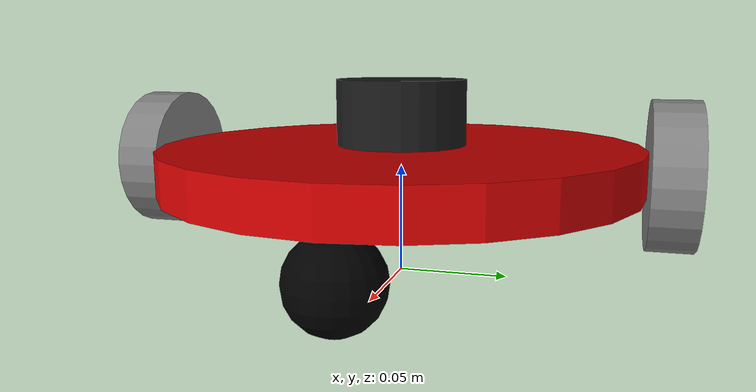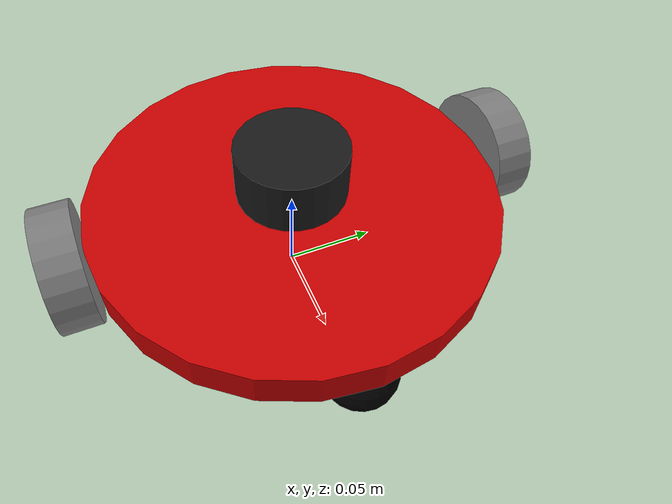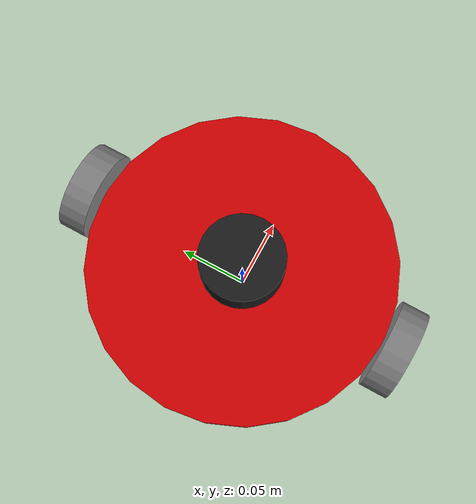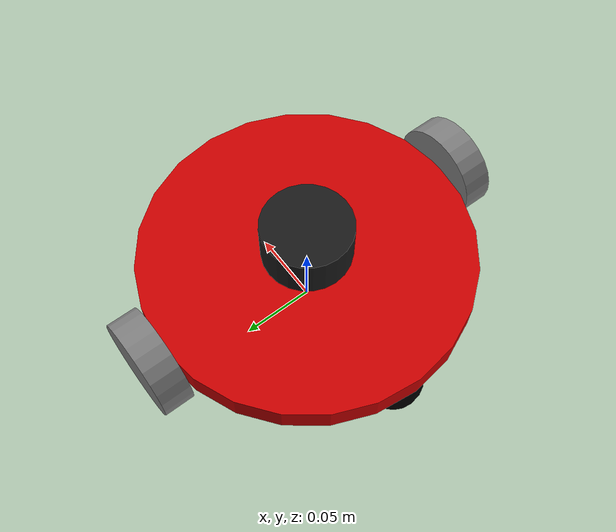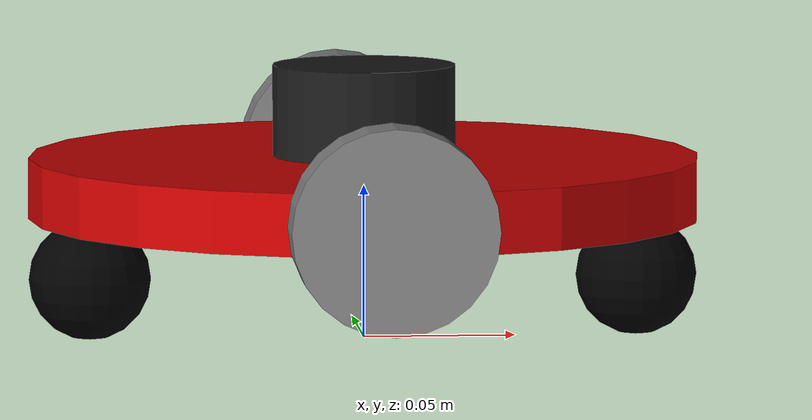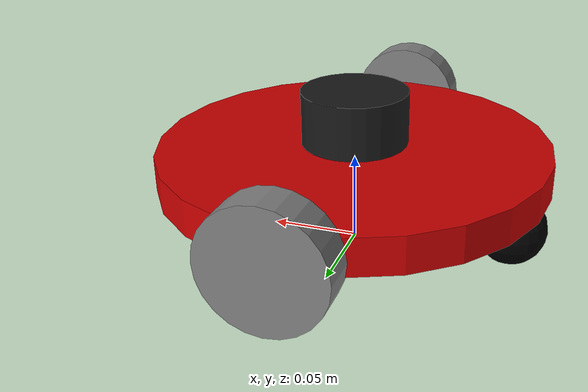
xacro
<?xml version="1.0"?>
<robot xmlns:xacro="http://www.ros.org/wiki/xacro" name="rubio_bot">

  <!--     PROPIEDADES GLOBALES -->
  <xacro:property name="wheel_radius" value="0.0325"/>      <!-- 3.2 cm -->
  <xacro:property name="wheel_separation" value="0.239"/>   <!-- distancia entre ruedas -->
  <xacro:property name="base_height" value="0.05"/>        <!-- altura base -->
  <xacro:property name="caster_radius" value="0.02"/>
  <xacro:property name="lidar_height" value="0.08"/>

  <!--          BASE_LINK        -->

  <link name="base_link">
    <visual>
      <origin xyz="0 0 ${base_height}" rpy="0 0 0"/>
      <geometry>
        <cylinder radius="0.11" length="0.02"/>
      </geometry>
      <material name="red">
        <color rgba="0.8 0.0 0.0 1.0"/>
      </material>
    </visual>

    <collision>
      <origin xyz="0 0 ${base_height}" rpy="0 0 0"/>
      <geometry>
        <cylinder radius="0.11" length="0.02"/>
      </geometry>
    </collision>

    <inertial>
      <mass value="1.0"/>
      <inertia ixx="0.01" iyy="0.01" izz="0.01"
               ixy="0" ixz="0" iyz="0"/>
    </inertial>
  </link>

  <!--       RUEDA IZQUIERDA     -->

  <link name="left_wheel">
    <visual>
      <geometry>
        <cylinder radius="${wheel_radius}" length="0.02"/>
      </geometry>
      <material name="gray">
        <color rgba="0.5 0.5 0.5 1.0"/>
      </material>
    </visual>
    <collision>
      <geometry>
        <cylinder radius="${wheel_radius}" length="0.02"/>
      </geometry>
    </collision>
    <inertial>
      <mass value="0.1"/>
      <inertia ixx="0.001" iyy="0.001" izz="0.001"
               ixy="0" ixz="0" iyz="0"/>
    </inertial>
  </link>

  <joint name="left_wheel_joint" type="continuous">
    <origin xyz="0 ${wheel_separation / 2} ${base_height}" rpy="1.5708 0 0"/>
    <parent link="base_link"/>
    <child link="left_wheel"/>
    <axis xyz="0 0 -1"/>
  </joint>

  <!--       RUEDA DERECHA       -->

  <link name="right_wheel">
    <visual>
      <geometry>
        <cylinder radius="${wheel_radius}" length="0.02"/>
      </geometry>
      <material name="gray">
        <color rgba="0.5 0.5 0.5 1.0"/>
      </material>
    </visual>
    <collision>
      <geometry>
        <cylinder radius="${wheel_radius}" length="0.02"/>
      </geometry>
    </collision>
    <inertial>
      <mass value="0.1"/>
      <inertia ixx="0.001" iyy="0.001" izz="0.001"
               ixy="0" ixz="0" iyz="0"/>
    </inertial>
  </link>

  <joint name="right_wheel_joint" type="continuous">
    <origin xyz="0 ${-wheel_separation / 2} ${base_height}" rpy="1.5708 0 0"/>
    <parent link="base_link"/>
    <child link="right_wheel"/>
    <axis xyz="0 0 1"/>
  </joint>

  <!--       CASTER FRONTAL      -->

  <link name="front_caster">
    <visual>
      <geometry>
        <sphere radius="${caster_radius}"/>
      </geometry>
      <material name="black">
        <color rgba="0 0 0 1"/>
      </material>
    </visual>
  </link>

  <joint name="front_caster_joint" type="fixed">
    <origin xyz="0.09 0 ${caster_radius}" rpy="0 0 0"/>
    <parent link="base_link"/>
    <child link="front_caster"/>
  </joint>

  <!--        CASTER TRASERO     -->

  <link name="rear_caster">
    <visual>
      <geometry>
        <sphere radius="${caster_radius}"/>
      </geometry>
      <material name="black">
        <color rgba="0 0 0 1"/>
      </material>
    </visual>
  </link>

  <joint name="rear_caster_joint" type="fixed">
    <origin xyz="-0.09 0 ${caster_radius}" rpy="0 0 0"/>
    <parent link="base_link"/>
    <child link="rear_caster"/>
  </joint>

  <!--            LIDAR          -->

  <link name="lidar_link">
    <visual>
      <origin xyz="0 0 ${lidar_height}" rpy="0 0 0"/>
      <geometry>
        <cylinder radius="0.03" length="0.03"/>
      </geometry>
      <material name="black">
        <color rgba="0.1 0.1 0.1 1"/>
      </material>
    </visual>
  </link>

  <joint name="lidar_joint" type="fixed">
    <origin xyz="0 0 -0.005" rpy="0 0 0"/>
    <parent link="base_link"/>
    <child link="lidar_link"/>
  </joint>

  <!--    ros2_control + joints  -->

  <!-- Transmission left -->
  <transmission name="left_wheel_trans">
    <type>transmission_interface/SimpleTransmission</type>
    <joint name="left_wheel_joint">
      <hardwareInterface>hardware_interface/VelocityJointInterface</hardwareInterface>
    </joint>
    <actuator name="left_actuator">
      <hardwareInterface>hardware_interface/VelocityJointInterface</hardwareInterface>
      <mechanicalReduction>1</mechanicalReduction>
    </actuator>
  </transmission>

  <!-- Transmission right -->
  <transmission name="right_wheel_trans">
    <type>transmission_interface/SimpleTransmission</type>
    <joint name="right_wheel_joint">
      <hardwareInterface>hardware_interface/VelocityJointInterface</hardwareInterface>
    </joint>
    <actuator name="right_actuator">
      <hardwareInterface>hardware_interface/VelocityJointInterface</hardwareInterface>
      <mechanicalReduction>1</mechanicalReduction>
    </actuator>
  </transmission>

  <!-- ros2_control interface placeholder -->
  <ros2_control name="rubio_hw">
    <hardware>
      <plugin>robot_nav.pico_hardware_interface:PicoSystem</plugin>
    </hardware>

    <joint name="left_wheel_joint">
      <command_interface name="velocity"/>
      <state_interface name="position"/>
      <state_interface name="velocity"/>
    </joint>

    <joint name="right_wheel_joint">
      <command_interface name="velocity"/>
      <state_interface name="position"/>
      <state_interface name="velocity"/>
    </joint>
  </ros2_control>

</robot>
